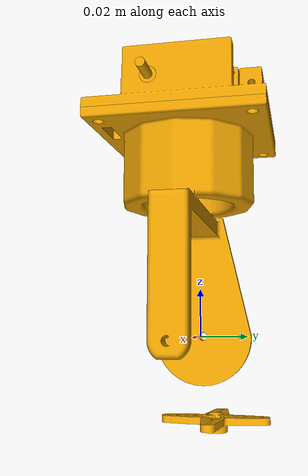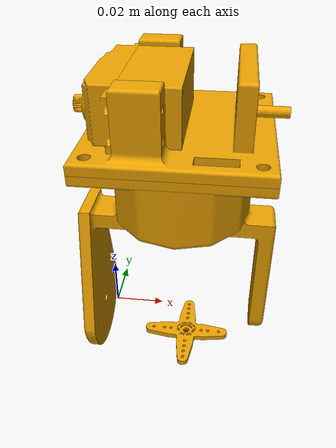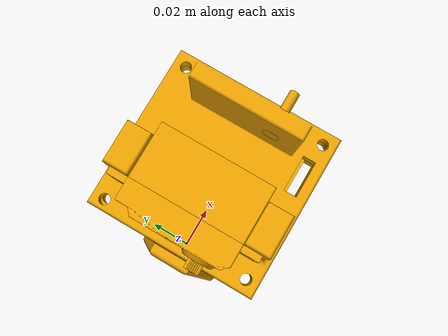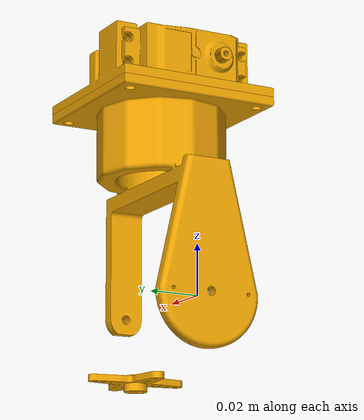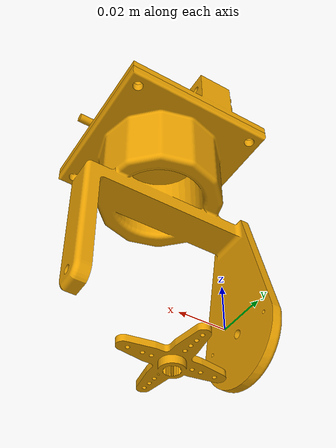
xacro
<?xml version="1.0"?>
<robot xmlns:xacro="http://ros.org/wiki/xacro">

  <!-- Define link2 -->
  <link name="link2">

    <!-- Visual -->
    <visual>
      <origin xyz="0.01074 0.07031 -0.09422" rpy="1.5708 0 0"/>
      <geometry>
        <mesh filename="package://fredo1_robot/../cad/all_files/c_servoarm.STL" scale="0.001 0.001 0.001"/>
      </geometry>
    </visual>

    <!-- Collision -->
    <collision>
      <origin xyz="0.01074 0.07031 -0.09422" rpy="1.5708 0 0"/>
      <geometry>
        <mesh filename="package://fredo1_robot/../cad/all_files/c_servoarm.STL" scale="0.001 0.001 0.001"/>
      </geometry>
    </collision>

    <!-- Visual -->
    <visual>
      <origin xyz="0.01074 0.07031 -0.09422" rpy="1.5708 0 0"/>
      <geometry>
        <mesh filename="package://fredo1_robot/../cad/all_files/c_secondarm.STL" scale="0.001 0.001 0.001"/>
      </geometry>
    </visual>

    <!-- Collision -->
    <collision>
      <origin xyz="0.01074 0.07031 -0.09422" rpy="1.5708 0 0"/>
      <geometry>
        <mesh filename="package://fredo1_robot/../cad/all_files/c_secondarm.STL" scale="0.001 0.001 0.001"/>
      </geometry>
    </collision>

    <!-- Visual -->
    <visual>
      <origin xyz="0.01074 0.07031 -0.09422" rpy="1.5708 0 0"/>
      <geometry>
        <mesh filename="package://fredo1_robot/../cad/all_files/c_servo_1.STL" scale="0.001 0.001 0.001"/>
      </geometry>
    </visual>

    <!-- Collision -->
    <collision>
      <origin xyz="0.01074 0.07031 -0.09422" rpy="1.5708 0 0"/>
      <geometry>
        <mesh filename="package://fredo1_robot/../cad/all_files/c_servo_1.STL" scale="0.001 0.001 0.001"/>
      </geometry>
    </collision>

    <!-- Visual -->
    <visual>
      <origin xyz="0.01074 0.07031 -0.09422" rpy="1.5708 0 0"/>
      <geometry>
        <mesh filename="package://fredo1_robot/../cad/all_files/c_servo_2.STL" scale="0.001 0.001 0.001"/>
      </geometry>
    </visual>

    <!-- Collision -->
    <collision>
      <origin xyz="0.01074 0.07031 -0.09422" rpy="1.5708 0 0"/>
      <geometry>
        <mesh filename="package://fredo1_robot/../cad/all_files/c_servo_2.STL" scale="0.001 0.001 0.001"/>
      </geometry>
    </collision>

    <!-- Visual -->
    <visual>
      <origin xyz="0.01074 0.07031 -0.09422" rpy="1.5708 0 0"/>
      <geometry>
        <mesh filename="package://fredo1_robot/../cad/all_files/c_servo_3.STL" scale="0.001 0.001 0.001"/>
      </geometry>
    </visual>

    <!-- Collision -->
    <collision>
      <origin xyz="0.01074 0.07031 -0.09422" rpy="1.5708 0 0"/>
      <geometry>
        <mesh filename="package://fredo1_robot/../cad/all_files/c_servo_3.STL" scale="0.001 0.001 0.001"/>
      </geometry>
    </collision>

    <!-- Visual -->
    <visual>
      <origin xyz="0.01074 0.07031 -0.09422" rpy="1.5708 0 0"/>
      <geometry>
        <mesh filename="package://fredo1_robot/../cad/all_files/c_servoplate.STL" scale="0.001 0.001 0.001"/>
      </geometry>
    </visual>

    <!-- Collision -->
    <collision>
      <origin xyz="0.01074 0.07031 -0.09422" rpy="1.5708 0 0"/>
      <geometry>
        <mesh filename="package://fredo1_robot/../cad/all_files/c_servoplate.STL" scale="0.001 0.001 0.001"/>
      </geometry>
    </collision>

    <!-- Visual -->
    <visual>
      <origin xyz="0.01074 0.07031 -0.09422" rpy="1.5708 0 0"/>
      <geometry>
        <mesh filename="package://fredo1_robot/../cad/all_files/c_rod.STL" scale="0.001 0.001 0.001"/>
      </geometry>
    </visual>

    <!-- Collision -->
    <collision>
      <origin xyz="0.01074 0.07031 -0.09422" rpy="1.5708 0 0"/>
      <geometry>
        <mesh filename="package://fredo1_robot/../cad/all_files/c_rod.STL" scale="0.001 0.001 0.001"/>
      </geometry>
    </collision>

    <!-- Visual -->
    <visual>
      <origin xyz="0.01074 0.07031 -0.09422" rpy="1.5708 0 0"/>
      <geometry>
        <mesh filename="package://fredo1_robot/../cad/all_files/c_servo_4.STL" scale="0.001 0.001 0.001"/>
      </geometry>
    </visual>

    <!-- Collision -->
    <collision>
      <origin xyz="0.01074 0.07031 -0.09422" rpy="1.5708 0 0"/>
      <geometry>
        <mesh filename="package://fredo1_robot/../cad/all_files/c_servo_4.STL" scale="0.001 0.001 0.001"/>
      </geometry>
    </collision>

    <!-- Inertial -->
    <inertial>
      <mass value="0.01"/>
      <inertia ixx="0.005" ixy="0.0" ixz="0.0"
               iyy="0.005" iyz="0.0"
               izz="0.005"/>
    </inertial>
  </link>

</robot>
